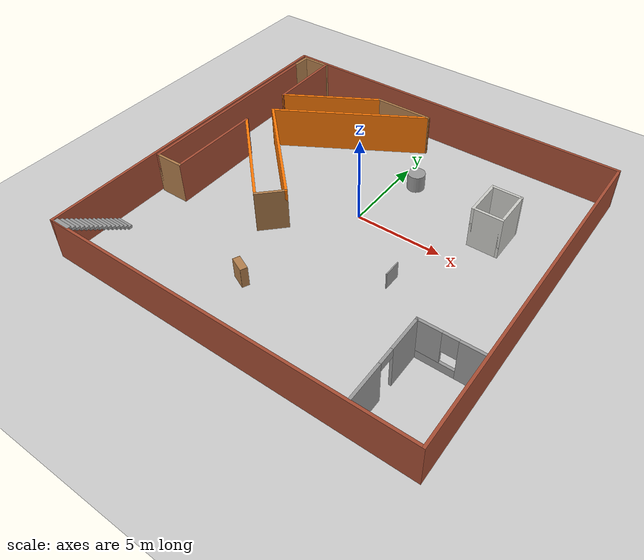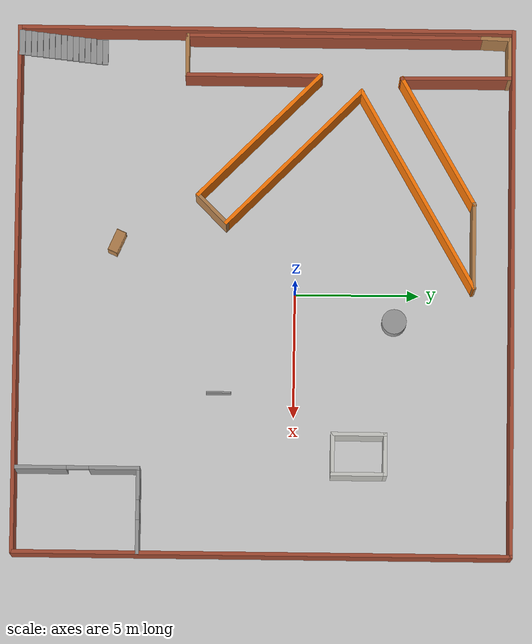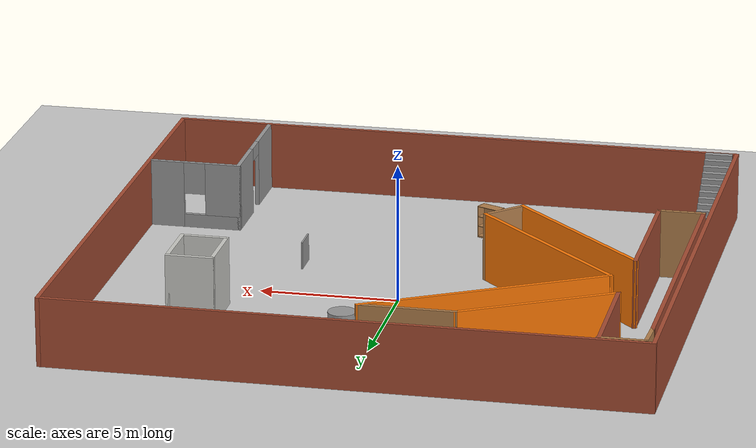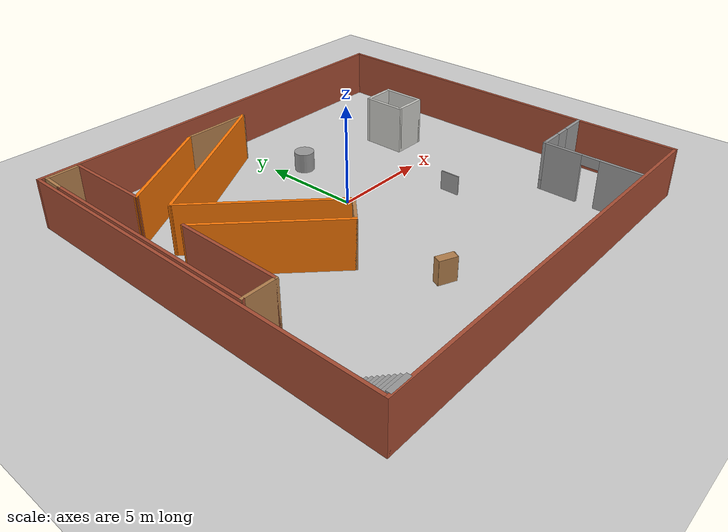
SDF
<sdf version="1.6">
 <world name="default">
  <plugin name="welcome_msg" filename="libwelcome_msg.so"/>
  <light name="sun" type="directional">
   <pose>0 0 10 0 -0 0</pose>
   <diffuse>0.8 0.8 0.8 1</diffuse>
   <specular>0.2 0.2 0.2 1</specular>
   <attenuation>
    <range>1000</range>
    <constant>0.9</constant>
    <linear>0.01</linear>
    <quadratic>0.001</quadratic>
   </attenuation>
   <direction>-0.5 0.1 -0.9</direction>
  </light>
  <model name="ground_plane">
   <static>1</static>
   <link name="link">
    <collision name="collision">
     <geometry><plane><normal>0 0 1</normal><size>100 100</size></plane></geometry>
     <surface>
      <contact><collide_bitmask>65535</collide_bitmask></contact>
      <friction><ode><mu>100</mu><mu2>50</mu2></ode></friction>
     </surface>
    </collision>
    <visual name="visual">
     <cast_shadows>0</cast_shadows>
     <geometry><plane><normal>0 0 1</normal><size>100 100</size></plane></geometry>
     <material>
      <script><uri>file://media/materials/scripts/gazebo.material</uri><name>Gazebo/Grey</name></script>
     </material>
    </visual>
   </link>
  </model>
  <gravity>0 0 -9.8</gravity>
  <magnetic_field>6e-06 2.3e-05 -4.2e-05</magnetic_field>
  <atmosphere type="adiabatic"/>
  <physics name="default_physics" default="0" type="ode">
   <max_step_size>0.001</max_step_size>
   <real_time_factor>1</real_time_factor>
   <real_time_update_rate>1000</real_time_update_rate>
  </physics>
  <scene><ambient>0.4 0.4 0.4 1</ambient><background>0.7 0.7 0.7 1</background><shadows>1</shadows></scene>
  <spherical_coordinates>
   <surface_model>EARTH_WGS84</surface_model>
   <latitude_deg>0</latitude_deg>
   <longitude_deg>0</longitude_deg>
   <elevation>0</elevation>
   <heading_deg>0</heading_deg>
  </spherical_coordinates>
  <model name="k_map">
   <pose>-5.13883 2.04621 0 0 -0 0</pose>
   <link name="Wall_0">
    <collision name="Wall_0_Collision">
     <geometry><box><size>12 0.15 2.5</size></box></geometry>
     <pose>0 0 1.25 0 -0 0</pose>
    </collision>
    <visual name="Wall_0_Visual">
     <pose>0 0 1.25 0 -0 0</pose>
     <geometry><box><size>12 0.15 2.5</size></box></geometry>
     <material>
      <script><uri>file://media/materials/scripts/gazebo.material</uri><name>Gazebo/Bricks</name></script>
      <ambient>1 1 1 1</ambient>
     </material>
     <meta><layer>0</layer></meta>
    </visual>
    <pose>-5.05323 -0.546651 0 0 0 -1.5708</pose>
   </link>
   <link name="Wall_1">
    <collision name="Wall_1_Collision">
     <geometry><box><size>1.75 0.15 2.5</size></box></geometry>
     <pose>0 0 1.25 0 -0 0</pose>
    </collision>
    <visual name="Wall_1_Visual">
     <pose>0 0 1.25 0 -0 0</pose>
     <geometry><box><size>1.75 0.15 2.5</size></box></geometry>
     <material>
      <script><uri>file://media/materials/scripts/gazebo.material</uri><name>Gazebo/Wood</name></script>
      <ambient>1 1 1 1</ambient>
     </material>
     <meta><layer>0</layer></meta>
    </visual>
    <pose>-4.25323 -6.47165 0 0 -0 0</pose>
   </link>
   <link name="Wall_10">
    <collision name="Wall_10_Collision">
     <geometry><box><size>1.75 0.15 2.5</size></box></geometry>
     <pose>0 0 1.25 0 -0 0</pose>
    </collision>
    <visual name="Wall_10_Visual">
     <pose>0 0 1.25 0 -0 0</pose>
     <geometry><box><size>1.75 0.15 2.5</size></box></geometry>
     <material>
      <script><uri>file://media/materials/scripts/gazebo.material</uri><name>Gazebo/Wood</name></script>
      <ambient>1 1 1 1</ambient>
     </material>
     <meta><layer>0</layer></meta>
    </visual>
    <pose>-4.21074 6.46879 0 0 -0 3.14159</pose>
   </link>
   <link name="Wall_14">
    <collision name="Wall_14_Collision">
     <geometry><box><size>1.24127 0.15 2.5</size></box></geometry>
     <pose>0 0 1.25 0 -0 0</pose>
    </collision>
    <visual name="Wall_14_Visual">
     <pose>0 0 1.25 0 -0 0</pose>
     <geometry><box><size>1.24127 0.15 2.5</size></box></geometry>
     <material>
      <script><uri>file://media/materials/scripts/gazebo.material</uri><name>Gazebo/Wood</name></script>
      <ambient>1 1 1 1</ambient>
     </material>
     <meta><layer>0</layer></meta>
    </visual>
    <pose>-5.03198 5.92357 0 0 -0 1.53185</pose>
   </link>
   <link name="Wall_2">
    <collision name="Wall_2_Collision">
     <geometry><box><size>5.5 0.15 2.5</size></box></geometry>
     <pose>0 0 1.25 0 -0 0</pose>
    </collision>
    <visual name="Wall_2_Visual">
     <pose>0 0 1.25 0 -0 0</pose>
     <geometry><box><size>5.5 0.15 2.5</size></box></geometry>
     <material>
      <script><uri>file://media/materials/scripts/gazebo.material</uri><name>Gazebo/Bricks</name></script>
      <ambient>1 1 1 1</ambient>
     </material>
     <meta><layer>0</layer></meta>
    </visual>
    <pose>-3.45323 -3.79665 0 0 -0 1.5708</pose>
   </link>
   <link name="Wall_3">
    <collision name="Wall_3_Collision">
     <geometry><box><size>7 0.15 2.5</size></box></geometry>
     <pose>0 0 1.25 0 -0 0</pose>
    </collision>
    <visual name="Wall_3_Visual">
     <pose>0 0 1.25 0 -0 0</pose>
     <geometry><box><size>7 0.15 2.5</size></box></geometry>
     <material>
      <script><uri>file://media/materials/scripts/gazebo.material</uri><name>Gazebo/Grey</name></script>
      <ambient>0.996078 0.47451 0.0196078 1</ambient>
     </material>
     <meta><layer>0</layer></meta>
    </visual>
    <pose>-1.03139 -3.54349 0 0 0 -0.785398</pose>
   </link>
   <link name="Wall_4">
    <collision name="Wall_4_Collision">
     <geometry><box><size>1.75 0.15 2.5</size></box></geometry>
     <pose>0 0 1.25 0 -0 0</pose>
    </collision>
    <visual name="Wall_4_Visual">
     <pose>0 0 1.25 0 -0 0</pose>
     <geometry><box><size>1.75 0.15 2.5</size></box></geometry>
     <material>
      <script><uri>file://media/materials/scripts/gazebo.material</uri><name>Gazebo/Wood</name></script>
      <ambient>1 1 1 1</ambient>
     </material>
     <meta><layer>0</layer></meta>
    </visual>
    <pose>1.95614 -5.39965 0 0 -0 0.785398</pose>
   </link>
   <link name="Wall_5">
    <collision name="Wall_5_Collision">
     <geometry><box><size>7.75 0.15 2.5</size></box></geometry>
     <pose>0 0 1.25 0 -0 0</pose>
    </collision>
    <visual name="Wall_5_Visual">
     <pose>0 0 1.25 0 -0 0</pose>
     <geometry><box><size>7.75 0.15 2.5</size></box></geometry>
     <material>
      <script><uri>file://media/materials/scripts/gazebo.material</uri><name>Gazebo/Grey</name></script>
      <ambient>0.996078 0.47451 0.0196078 1</ambient>
     </material>
     <meta><layer>0</layer></meta>
    </visual>
    <pose>-0.165184 -2.14696 0 0 -0 2.35619</pose>
   </link>
   <link name="Wall_6">
    <collision name="Wall_6_Collision">
     <geometry><box><size>9.25 0.15 2.5</size></box></geometry>
     <pose>0 0 1.25 0 -0 0</pose>
    </collision>
    <visual name="Wall_6_Visual">
     <pose>0 0 1.25 0 -0 0</pose>
     <geometry><box><size>9.25 0.15 2.5</size></box></geometry>
     <material>
      <script><uri>file://media/materials/scripts/gazebo.material</uri><name>Gazebo/Grey</name></script>
      <ambient>0.996078 0.47451 0.0196078 1</ambient>
     </material>
     <meta><layer>0</layer></meta>
    </visual>
    <pose>1.08823 2.81505 0 0 -0 0.523599</pose>
   </link>
   <link name="Wall_7">
    <collision name="Wall_7_Collision">
     <geometry><box><size>3.5 0.15 2.5</size></box></geometry>
     <pose>0 0 1.25 0 -0 0</pose>
    </collision>
    <visual name="Wall_7_Visual">
     <pose>0 0 1.25 0 -0 0</pose>
     <geometry><box><size>3.5 0.15 2.5</size></box></geometry>
     <material>
      <script><uri>file://media/materials/scripts/gazebo.material</uri><name>Gazebo/Wood</name></script>
      <ambient>1 1 1 1</ambient>
     </material>
     <meta><layer>0</layer></meta>
    </visual>
    <pose>3.35364 5.09005 0 0 -0 3.14159</pose>
   </link>
   <link name="Wall_8">
    <collision name="Wall_8_Collision">
     <geometry><box><size>6 0.15 2.5</size></box></geometry>
     <pose>0 0 1.25 0 -0 0</pose>
    </collision>
    <visual name="Wall_8_Visual">
     <pose>0 0 1.25 0 -0 0</pose>
     <geometry><box><size>6 0.15 2.5</size></box></geometry>
     <material>
      <script><uri>file://media/materials/scripts/gazebo.material</uri><name>Gazebo/Grey</name></script>
      <ambient>0.996078 0.47451 0.0196078 1</ambient>
     </material>
     <meta><layer>0</layer></meta>
    </visual>
    <pose>-0.854482 3.62755 0 0 0 -2.61799</pose>
   </link>
   <link name="Wall_9">
    <collision name="Wall_9_Collision">
     <geometry><box><size>4.45399 0.15 2.5</size></box></geometry>
     <pose>0 0 1.25 0 -0 0</pose>
    </collision>
    <visual name="Wall_9_Visual">
     <pose>0 0 1.25 0 -0 0</pose>
     <geometry><box><size>4.45399 0.15 2.5</size></box></geometry>
     <material>
      <script><uri>file://media/materials/scripts/gazebo.material</uri><name>Gazebo/Bricks</name></script>
      <ambient>1 1 1 1</ambient>
     </material>
     <meta><layer>0</layer></meta>
    </visual>
    <pose>-3.41074 4.31692 0 0 -0 1.58154</pose>
   </link>
   <static>1</static>
  </model>
  <model name="kevin_2">
   <pose>0.096778 -1.24129 0 0 -0 0</pose>
   <link name="Stairs_1">
    <visual name="Stairs_1_Visual_0">
     <pose>-9.91319 -6.55547 0.083333 0 -0 0</pose>
     <geometry><box><size>1 0.233333 0.166667</size></box></geometry>
     <material>
      <script><uri>file://media/materials/scripts/gazebo.material</uri><name>Gazebo/Grey</name></script>
      <ambient>1 1 1 1</ambient>
     </material>
     <meta><layer>0</layer></meta>
    </visual>
    <collision name="Stairs_1_Collision_0">
     <geometry><box><size>1 0.233333 0.166667</size></box></geometry>
     <pose>-9.91319 -6.55547 0.083333 0 -0 0</pose>
    </collision>
    <visual name="Stairs_1_Visual_1">
     <pose>-9.91319 -6.78881 0.25 0 -0 0</pose>
     <geometry><box><size>1 0.233333 0.166667</size></box></geometry>
     <material>
      <script><uri>file://media/materials/scripts/gazebo.material</uri><name>Gazebo/Grey</name></script>
      <ambient>1 1 1 1</ambient>
     </material>
     <meta><layer>0</layer></meta>
    </visual>
    <collision name="Stairs_1_Collision_1">
     <geometry><box><size>1 0.233333 0.166667</size></box></geometry>
     <pose>-9.91319 -6.78881 0.25 0 -0 0</pose>
    </collision>
    <visual name="Stairs_1_Visual_2">
     <pose>-9.91319 -7.02214 0.416667 0 -0 0</pose>
     <geometry><box><size>1 0.233333 0.166667</size></box></geometry>
     <material>
      <script><uri>file://media/materials/scripts/gazebo.material</uri><name>Gazebo/Grey</name></script>
      <ambient>1 1 1 1</ambient>
     </material>
     <meta><layer>0</layer></meta>
    </visual>
    <collision name="Stairs_1_Collision_2">
     <geometry><box><size>1 0.233333 0.166667</size></box></geometry>
     <pose>-9.91319 -7.02214 0.416667 0 -0 0</pose>
    </collision>
    <visual name="Stairs_1_Visual_3">
     <pose>-9.91319 -7.25547 0.583333 0 -0 0</pose>
     <geometry><box><size>1 0.233333 0.166667</size></box></geometry>
     <material>
      <script><uri>file://media/materials/scripts/gazebo.material</uri><name>Gazebo/Grey</name></script>
      <ambient>1 1 1 1</ambient>
     </material>
     <meta><layer>0</layer></meta>
    </visual>
    <collision name="Stairs_1_Collision_3">
     <geometry><box><size>1 0.233333 0.166667</size></box></geometry>
     <pose>-9.91319 -7.25547 0.583333 0 -0 0</pose>
    </collision>
    <visual name="Stairs_1_Visual_4">
     <pose>-9.91319 -7.48881 0.75 0 -0 0</pose>
     <geometry><box><size>1 0.233333 0.166667</size></box></geometry>
     <material>
      <script><uri>file://media/materials/scripts/gazebo.material</uri><name>Gazebo/Grey</name></script>
      <ambient>1 1 1 1</ambient>
     </material>
     <meta><layer>0</layer></meta>
    </visual>
    <collision name="Stairs_1_Collision_4">
     <geometry><box><size>1 0.233333 0.166667</size></box></geometry>
     <pose>-9.91319 -7.48881 0.75 0 -0 0</pose>
    </collision>
    <visual name="Stairs_1_Visual_5">
     <pose>-9.91319 -7.72214 0.916667 0 -0 0</pose>
     <geometry><box><size>1 0.233333 0.166667</size></box></geometry>
     <material>
      <script><uri>file://media/materials/scripts/gazebo.material</uri><name>Gazebo/Grey</name></script>
      <ambient>1 1 1 1</ambient>
     </material>
     <meta><layer>0</layer></meta>
    </visual>
    <collision name="Stairs_1_Collision_5">
     <geometry><box><size>1 0.233333 0.166667</size></box></geometry>
     <pose>-9.91319 -7.72214 0.916667 0 -0 0</pose>
    </collision>
    <visual name="Stairs_1_Visual_6">
     <pose>-9.91319 -7.95547 1.08333 0 -0 0</pose>
     <geometry><box><size>1 0.233333 0.166667</size></box></geometry>
     <material>
      <script><uri>file://media/materials/scripts/gazebo.material</uri><name>Gazebo/Grey</name></script>
      <ambient>1 1 1 1</ambient>
     </material>
     <meta><layer>0</layer></meta>
    </visual>
    <collision name="Stairs_1_Collision_6">
     <geometry><box><size>1 0.233333 0.166667</size></box></geometry>
     <pose>-9.91319 -7.95547 1.08333 0 -0 0</pose>
    </collision>
    <visual name="Stairs_1_Visual_7">
     <pose>-9.91319 -8.18881 1.25 0 -0 0</pose>
     <geometry><box><size>1 0.233333 0.166667</size></box></geometry>
     <material>
      <script><uri>file://media/materials/scripts/gazebo.material</uri><name>Gazebo/Grey</name></script>
      <ambient>1 1 1 1</ambient>
     </material>
     <meta><layer>0</layer></meta>
    </visual>
    <collision name="Stairs_1_Collision_7">
     <geometry><box><size>1 0.233333 0.166667</size></box></geometry>
     <pose>-9.91319 -8.18881 1.25 0 -0 0</pose>
    </collision>
    <visual name="Stairs_1_Visual_8">
     <pose>-9.91319 -8.42214 1.41667 0 -0 0</pose>
     <geometry><box><size>1 0.233333 0.166667</size></box></geometry>
     <material>
      <script><uri>file://media/materials/scripts/gazebo.material</uri><name>Gazebo/Grey</name></script>
      <ambient>1 1 1 1</ambient>
     </material>
     <meta><layer>0</layer></meta>
    </visual>
    <collision name="Stairs_1_Collision_8">
     <geometry><box><size>1 0.233333 0.166667</size></box></geometry>
     <pose>-9.91319 -8.42214 1.41667 0 -0 0</pose>
    </collision>
    <visual name="Stairs_1_Visual_9">
     <pose>-9.91319 -8.65547 1.58333 0 -0 0</pose>
     <geometry><box><size>1 0.233333 0.166667</size></box></geometry>
     <material>
      <script><uri>file://media/materials/scripts/gazebo.material</uri><name>Gazebo/Grey</name></script>
      <ambient>1 1 1 1</ambient>
     </material>
     <meta><layer>0</layer></meta>
    </visual>
    <collision name="Stairs_1_Collision_9">
     <geometry><box><size>1 0.233333 0.166667</size></box></geometry>
     <pose>-9.91319 -8.65547 1.58333 0 -0 0</pose>
    </collision>
    <visual name="Stairs_1_Visual_10">
     <pose>-9.91319 -8.88881 1.75 0 -0 0</pose>
     <geometry><box><size>1 0.233333 0.166667</size></box></geometry>
     <material>
      <script><uri>file://media/materials/scripts/gazebo.material</uri><name>Gazebo/Grey</name></script>
      <ambient>1 1 1 1</ambient>
     </material>
     <meta><layer>0</layer></meta>
    </visual>
    <collision name="Stairs_1_Collision_10">
     <geometry><box><size>1 0.233333 0.166667</size></box></geometry>
     <pose>-9.91319 -8.88881 1.75 0 -0 0</pose>
    </collision>
    <visual name="Stairs_1_Visual_11">
     <pose>-9.91319 -9.12214 1.91667 0 -0 0</pose>
     <geometry><box><size>1 0.233333 0.166667</size></box></geometry>
     <material>
      <script><uri>file://media/materials/scripts/gazebo.material</uri><name>Gazebo/Grey</name></script>
      <ambient>1 1 1 1</ambient>
     </material>
     <meta><layer>0</layer></meta>
    </visual>
    <collision name="Stairs_1_Collision_11">
     <geometry><box><size>1 0.233333 0.166667</size></box></geometry>
     <pose>-9.91319 -9.12214 1.91667 0 -0 0</pose>
    </collision>
    <visual name="Stairs_1_Visual_12">
     <pose>-9.91319 -9.35547 2.08333 0 -0 0</pose>
     <geometry><box><size>1 0.233333 0.166667</size></box></geometry>
     <material>
      <script><uri>file://media/materials/scripts/gazebo.material</uri><name>Gazebo/Grey</name></script>
      <ambient>1 1 1 1</ambient>
     </material>
     <meta><layer>0</layer></meta>
    </visual>
    <collision name="Stairs_1_Collision_12">
     <geometry><box><size>1 0.233333 0.166667</size></box></geometry>
     <pose>-9.91319 -9.35547 2.08333 0 -0 0</pose>
    </collision>
    <visual name="Stairs_1_Visual_13">
     <pose>-9.91319 -9.58881 2.25 0 -0 0</pose>
     <geometry><box><size>1 0.233333 0.166667</size></box></geometry>
     <material>
      <script><uri>file://media/materials/scripts/gazebo.material</uri><name>Gazebo/Grey</name></script>
      <ambient>1 1 1 1</ambient>
     </material>
     <meta><layer>0</layer></meta>
    </visual>
    <collision name="Stairs_1_Collision_13">
     <geometry><box><size>1 0.233333 0.166667</size></box></geometry>
     <pose>-9.91319 -9.58881 2.25 0 -0 0</pose>
    </collision>
    <visual name="Stairs_1_Visual_14">
     <pose>-9.91319 -9.82214 2.41667 0 -0 0</pose>
     <geometry><box><size>1 0.233333 0.166667</size></box></geometry>
     <material>
      <script><uri>file://media/materials/scripts/gazebo.material</uri><name>Gazebo/Grey</name></script>
      <ambient>1 1 1 1</ambient>
     </material>
     <meta><layer>0</layer></meta>
    </visual>
    <collision name="Stairs_1_Collision_14">
     <geometry><box><size>1 0.233333 0.166667</size></box></geometry>
     <pose>-9.91319 -9.82214 2.41667 0 -0 0</pose>
    </collision>
   </link>
   <link name="Wall_11">
    <collision name="Wall_11_Collision">
     <geometry><box><size>20 0.15 2.5</size></box></geometry>
     <pose>0 0 1.25 0 -0 0</pose>
    </collision>
    <visual name="Wall_11_Visual">
     <pose>0 0 1.25 0 -0 0</pose>
     <geometry><box><size>20 0.15 2.5</size></box></geometry>
     <material>
      <script><uri>file://media/materials/scripts/gazebo.material</uri><name>Gazebo/Bricks</name></script>
      <ambient>1 1 1 1</ambient>
     </material>
     <meta><layer>0</layer></meta>
    </visual>
    <pose>-10.55 0 0 0 0 -1.5708</pose>
   </link>
   <link name="Wall_12">
    <collision name="Wall_12_Collision">
     <geometry><box><size>21.25 0.15 2.5</size></box></geometry>
     <pose>0 0 1.25 0 -0 0</pose>
    </collision>
    <visual name="Wall_12_Visual">
     <pose>0 0 1.25 0 -0 0</pose>
     <geometry><box><size>21.25 0.15 2.5</size></box></geometry>
     <material>
      <script><uri>file://media/materials/scripts/gazebo.material</uri><name>Gazebo/Bricks</name></script>
      <ambient>1 1 1 1</ambient>
     </material>
     <meta><layer>0</layer></meta>
    </visual>
    <pose>0 -9.925 0 0 -0 0</pose>
   </link>
   <link name="Wall_13">
    <collision name="Wall_13_Collision">
     <geometry><box><size>20 0.15 2.5</size></box></geometry>
     <pose>0 0 1.25 0 -0 0</pose>
    </collision>
    <visual name="Wall_13_Visual">
     <pose>0 0 1.25 0 -0 0</pose>
     <geometry><box><size>20 0.15 2.5</size></box></geometry>
     <material>
      <script><uri>file://media/materials/scripts/gazebo.material</uri><name>Gazebo/Bricks</name></script>
      <ambient>1 1 1 1</ambient>
     </material>
     <meta><layer>0</layer></meta>
    </visual>
    <pose>10.55 0 0 0 -0 1.5708</pose>
   </link>
   <link name="Wall_14">
    <collision name="Wall_14_Collision">
     <geometry><box><size>21.25 0.15 2.5</size></box></geometry>
     <pose>0 0 1.25 0 -0 0</pose>
    </collision>
    <visual name="Wall_14_Visual">
     <pose>0 0 1.25 0 -0 0</pose>
     <geometry><box><size>21.25 0.15 2.5</size></box></geometry>
     <material>
      <script><uri>file://media/materials/scripts/gazebo.material</uri><name>Gazebo/Bricks</name></script>
      <ambient>1 1 1 1</ambient>
     </material>
     <meta><layer>0</layer></meta>
    </visual>
    <pose>0 9.925 0 0 -0 3.14159</pose>
   </link>
   <link name="Wall_16">
    <pose>8.8606 -4.93398 0 0 -0 3.14159</pose>
    <visual name="Wall_16_Visual_0">
     <pose>-1.06341 0 1.25 0 -0 0</pose>
     <geometry><box><size>1.37317 0.15 2.5</size></box></geometry>
     <material>
      <script><uri>file://media/materials/scripts/gazebo.material</uri><name>Gazebo/Grey</name></script>
      <ambient>1 1 1 1</ambient>
     </material>
     <meta><layer>0</layer></meta>
    </visual>
    <collision name="Wall_16_Collision_0">
     <geometry><box><size>1.37317 0.15 2.5</size></box></geometry>
     <pose>-1.06341 0 1.25 0 -0 0</pose>
    </collision>
    <visual name="Wall_16_Visual_1">
     <pose>0.686585 0 0.25 0 -0 0</pose>
     <geometry><box><size>2.12683 0.15 0.5</size></box></geometry>
     <material>
      <script><uri>file://media/materials/scripts/gazebo.material</uri><name>Gazebo/Grey</name></script>
      <ambient>1 1 1 1</ambient>
     </material>
     <meta><layer>0</layer></meta>
    </visual>
    <collision name="Wall_16_Collision_1">
     <geometry><box><size>2.12683 0.15 0.5</size></box></geometry>
     <pose>0.686585 0 0.25 0 -0 0</pose>
    </collision>
    <visual name="Wall_16_Visual_2">
     <pose>1.08658 0 1.5 0 -0 0</pose>
     <geometry><box><size>1.32683 0.15 2</size></box></geometry>
     <material>
      <script><uri>file://media/materials/scripts/gazebo.material</uri><name>Gazebo/Grey</name></script>
      <ambient>1 1 1 1</ambient>
     </material>
     <meta><layer>0</layer></meta>
    </visual>
    <collision name="Wall_16_Collision_2">
     <geometry><box><size>1.32683 0.15 2</size></box></geometry>
     <pose>1.08658 0 1.5 0 -0 0</pose>
    </collision>
    <visual name="Wall_16_Visual_3">
     <pose>0.02317 0 1.9 0 -0 0</pose>
     <geometry><box><size>0.8 0.15 1.2</size></box></geometry>
     <material>
      <script><uri>file://media/materials/scripts/gazebo.material</uri><name>Gazebo/Grey</name></script>
      <ambient>1 1 1 1</ambient>
     </material>
     <meta><layer>0</layer></meta>
    </visual>
    <collision name="Wall_16_Collision_3">
     <geometry><box><size>0.8 0.15 1.2</size></box></geometry>
     <pose>0.02317 0 1.9 0 -0 0</pose>
    </collision>
   </link>
   <link name="Wall_17">
    <pose>7.1856 -7.35898 0 0 0 -1.5708</pose>
    <visual name="Wall_17_Visual_0">
     <pose>-1.48463 0 1.25 0 -0 0</pose>
     <geometry><box><size>2.03074 0.15 2.5</size></box></geometry>
     <material>
      <script><uri>file://media/materials/scripts/gazebo.material</uri><name>Gazebo/Grey</name></script>
      <ambient>1 1 1 1</ambient>
     </material>
     <meta><layer>0</layer></meta>
    </visual>
    <collision name="Wall_17_Collision_0">
     <geometry><box><size>2.03074 0.15 2.5</size></box></geometry>
     <pose>-1.48463 0 1.25 0 -0 0</pose>
    </collision>
    <visual name="Wall_17_Visual_1">
     <pose>1.46537 0 1.25 0 -0 0</pose>
     <geometry><box><size>2.06926 0.15 2.5</size></box></geometry>
     <material>
      <script><uri>file://media/materials/scripts/gazebo.material</uri><name>Gazebo/Grey</name></script>
      <ambient>1 1 1 1</ambient>
     </material>
     <meta><layer>0</layer></meta>
    </visual>
    <collision name="Wall_17_Collision_1">
     <geometry><box><size>2.06926 0.15 2.5</size></box></geometry>
     <pose>1.46537 0 1.25 0 -0 0</pose>
    </collision>
    <visual name="Wall_17_Visual_2">
     <pose>-0.01926 0 2.25 0 -0 0</pose>
     <geometry><box><size>0.9 0.15 0.5</size></box></geometry>
     <material>
      <script><uri>file://media/materials/scripts/gazebo.material</uri><name>Gazebo/Grey</name></script>
      <ambient>1 1 1 1</ambient>
     </material>
     <meta><layer>0</layer></meta>
    </visual>
    <collision name="Wall_17_Collision_2">
     <geometry><box><size>0.9 0.15 0.5</size></box></geometry>
     <pose>-0.01926 0 2.25 0 -0 0</pose>
    </collision>
   </link>
   <link name="Wall_22">
    <collision name="Wall_22_Collision">
     <geometry><box><size>2.25 0.15 2.5</size></box></geometry>
     <pose>0 0 1.25 0 -0 0</pose>
    </collision>
    <visual name="Wall_22_Visual">
     <pose>0 0 1.25 0 -0 0</pose>
     <geometry><box><size>2.25 0.15 2.5</size></box></geometry>
     <material>
      <script><uri>file://media/materials/scripts/gazebo.material</uri><name>Gazebo/CeilingTiled</name></script>
      <ambient>1 1 1 1</ambient>
     </material>
     <meta><layer>0</layer></meta>
    </visual>
    <pose>5.72412 3.85125 0 0 0 -1.5708</pose>
   </link>
   <link name="Wall_23">
    <collision name="Wall_23_Collision">
     <geometry><box><size>1.75 0.15 2.5</size></box></geometry>
     <pose>0 0 1.25 0 -0 0</pose>
    </collision>
    <visual name="Wall_23_Visual">
     <pose>0 0 1.25 0 -0 0</pose>
     <geometry><box><size>1.75 0.15 2.5</size></box></geometry>
     <material>
      <script><uri>file://media/materials/scripts/gazebo.material</uri><name>Gazebo/CeilingTiled</name></script>
      <ambient>1 1 1 1</ambient>
     </material>
     <meta><layer>0</layer></meta>
    </visual>
    <pose>6.52412 2.80125 0 0 -0 0</pose>
   </link>
   <link name="Wall_24">
    <collision name="Wall_24_Collision">
     <geometry><box><size>2.25 0.15 2.5</size></box></geometry>
     <pose>0 0 1.25 0 -0 0</pose>
    </collision>
    <visual name="Wall_24_Visual">
     <pose>0 0 1.25 0 -0 0</pose>
     <geometry><box><size>2.25 0.15 2.5</size></box></geometry>
     <material>
      <script><uri>file://media/materials/scripts/gazebo.material</uri><name>Gazebo/CeilingTiled</name></script>
      <ambient>1 1 1 1</ambient>
     </material>
     <meta><layer>0</layer></meta>
    </visual>
    <pose>7.32412 3.85125 0 0 -0 1.5708</pose>
   </link>
   <link name="Wall_25">
    <collision name="Wall_25_Collision">
     <geometry><box><size>1.75 0.15 2.5</size></box></geometry>
     <pose>0 0 1.25 0 -0 0</pose>
    </collision>
    <visual name="Wall_25_Visual">
     <pose>0 0 1.25 0 -0 0</pose>
     <geometry><box><size>1.75 0.15 2.5</size></box></geometry>
     <material>
      <script><uri>file://media/materials/scripts/gazebo.material</uri><name>Gazebo/CeilingTiled</name></script>
      <ambient>1 1 1 1</ambient>
     </material>
     <meta><layer>0</layer></meta>
    </visual>
    <pose>6.52412 4.90125 0 0 -0 3.14159</pose>
   </link>
   <static>1</static>
  </model>
  <model name="unit_box">
   <pose>4.06478 -3.02672 0.5 0 -0 0</pose>
   <link name="link">
    <inertial>
     <mass>1</mass>
     <inertia>
      <ixx>0.166667</ixx>
      <ixy>0</ixy>
      <ixz>0</ixz>
      <iyy>0.166667</iyy>
      <iyz>0</iyz>
      <izz>0.166667</izz>
     </inertia>
    </inertial>
    <collision name="collision"><geometry><box><size>0.0612562 1 1</size></box></geometry></collision>
    <visual name="visual">
     <geometry><box><size>0.0612562 1 1</size></box></geometry>
     <material>
      <script><name>Gazebo/Grey</name><uri>file://media/materials/scripts/gazebo.material</uri></script>
     </material>
    </visual>
   </link>
  </model>
  <model name="unit_cylinder">
   <pose>1.13703 4.00384 0.5 0 -0 0</pose>
   <link name="link">
    <inertial>
     <mass>1</mass>
     <inertia><ixx>0.145833</ixx><ixy>0</ixy><ixz>0</ixz><iyy>0.145833</iyy><iyz>0</iyz><izz>0.125</izz></inertia>
    </inertial>
    <collision name="collision">
     <geometry><cylinder><radius>0.5</radius><length>1</length></cylinder></geometry>
    </collision>
    <visual name="visual">
     <geometry><cylinder><radius>0.5</radius><length>1</length></cylinder></geometry>
     <material>
      <script><name>Gazebo/Grey</name><uri>file://media/materials/scripts/gazebo.material</uri></script>
     </material>
    </visual>
   </link>
  </model>
  <model name="bookshelf">
   <static>1</static>
   <link name="link">
    <inertial><mass>1</mass></inertial>
    <collision name="back">
     <pose>0 0.005 0.6 0 -0 0</pose>
     <geometry><box><size>0.9 0.01 1.2</size></box></geometry>
    </collision>
    <visual name="visual1">
     <pose>0 0.005 0.6 0 -0 0</pose>
     <geometry><box><size>0.9 0.01 1.2</size></box></geometry>
     <material>
      <script><uri>file://media/materials/scripts/gazebo.material</uri><name>Gazebo/Wood</name></script>
     </material>
    </visual>
    <collision name="left_side">
     <pose>0.45 -0.195 0.6 0 -0 0</pose>
     <geometry><box><size>0.02 0.4 1.2</size></box></geometry>
    </collision>
    <visual name="visual2">
     <pose>0.45 -0.195 0.6 0 -0 0</pose>
     <geometry><box><size>0.02 0.4 1.2</size></box></geometry>
     <material>
      <script><uri>file://media/materials/scripts/gazebo.material</uri><name>Gazebo/Wood</name></script>
     </material>
    </visual>
    <collision name="right_side">
     <pose>-0.45 -0.195 0.6 0 -0 0</pose>
     <geometry><box><size>0.02 0.4 1.2</size></box></geometry>
    </collision>
    <visual name="visual3">
     <pose>-0.45 -0.195 0.6 0 -0 0</pose>
     <geometry><box><size>0.02 0.4 1.2</size></box></geometry>
     <material>
      <script><uri>file://media/materials/scripts/gazebo.material</uri><name>Gazebo/Wood</name></script>
     </material>
    </visual>
    <collision name="bottom">
     <pose>0 -0.195 0.03 0 -0 0</pose>
     <geometry><box><size>0.88 0.4 0.06</size></box></geometry>
    </collision>
    <visual name="visual4">
     <pose>0 -0.195 0.03 0 -0 0</pose>
     <geometry><box><size>0.88 0.4 0.06</size></box></geometry>
     <material>
      <script><uri>file://media/materials/scripts/gazebo.material</uri><name>Gazebo/Wood</name></script>
     </material>
    </visual>
    <collision name="top">
     <pose>0 -0.195 1.19 0 -0 0</pose>
     <geometry><box><size>0.88 0.4 0.02</size></box></geometry>
    </collision>
    <visual name="visual5">
     <pose>0 -0.195 1.19 0 -0 0</pose>
     <geometry><box><size>0.88 0.4 0.02</size></box></geometry>
     <material>
      <script><uri>file://media/materials/scripts/gazebo.material</uri><name>Gazebo/Wood</name></script>
     </material>
    </visual>
    <collision name="low_shelf">
     <pose>0 -0.195 0.43 0 -0 0</pose>
     <geometry><box><size>0.88 0.4 0.02</size></box></geometry>
    </collision>
    <visual name="visual6">
     <pose>0 -0.195 0.43 0 -0 0</pose>
     <geometry><box><size>0.88 0.4 0.02</size></box></geometry>
     <material>
      <script><uri>file://media/materials/scripts/gazebo.material</uri><name>Gazebo/Wood</name></script>
     </material>
    </visual>
    <collision name="high_shelf">
     <pose>0 -0.195 0.8 0 -0 0</pose>
     <geometry><box><size>0.88 0.4 0.02</size></box></geometry>
    </collision>
    <visual name="visual7">
     <pose>0 -0.195 0.8 0 -0 0</pose>
     <geometry><box><size>0.88 0.4 0.02</size></box></geometry>
     <material>
      <script><uri>file://media/materials/scripts/gazebo.material</uri><name>Gazebo/Wood</name></script>
     </material>
    </visual>
   </link>
   <pose>-2.05496 -7.35956 0 0 -0 2.72202</pose>
  </model>
  <plugin filename="libcollision_map_creator.so" name="collision_map_creator"/>
 </world>
</sdf>
